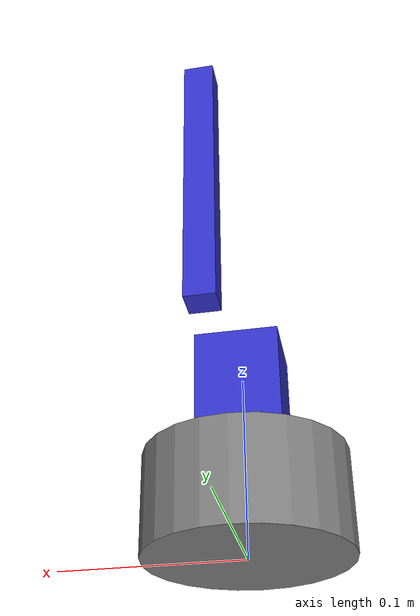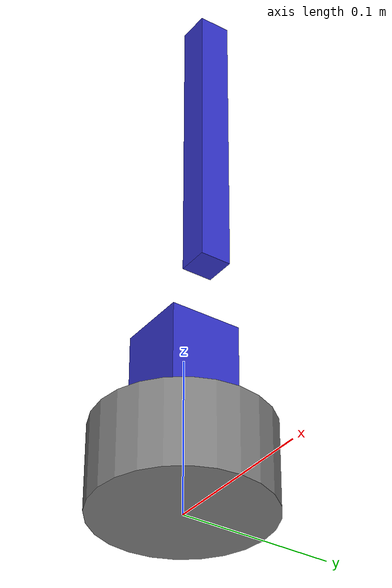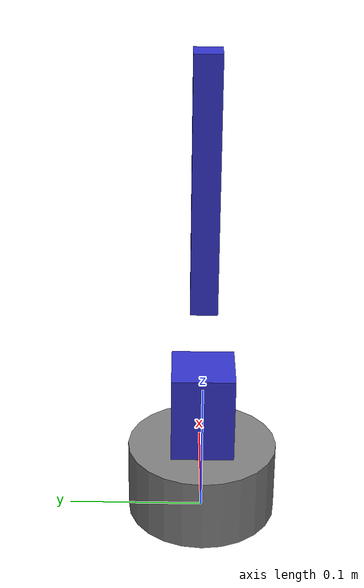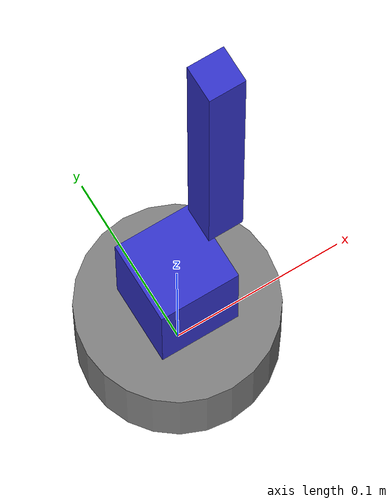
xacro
<?xml version="1.0"?>
<robot xmlns:xacro="http://ros.org/wiki/xacro" name="primio_arm_r01">

  <!-- Basic dimensions -->
  <xacro:property name="base_height" value="0.055"/>     <!-- 55mm -->
  <xacro:property name="base_radius" value="0.055"/>      <!-- 110mm diameter -->
  <xacro:property name="motor_size" value="0.046"/>       <!-- 46mm square face -->
  <xacro:property name="motor_height" value="0.065"/>     <!-- 65mm tall -->
  <xacro:property name="motor_offset" value="0.023"/>     <!-- 23mm offset from center -->
  <xacro:property name="link1_size" value="0.02"/>        <!-- 20mm square -->
  <xacro:property name="link1_length" value="0.19"/>      <!-- 190mm tall -->

  <!-- Colors -->
  <material name="gray"><color rgba="0.5 0.5 0.5 1.0"/></material>
  <material name="blue"><color rgba="0.2 0.2 0.8 1.0"/></material>

  <!-- Base link: stationary cylinder -->
  <link name="base_link">
    <visual>
      <origin xyz="0 0 ${base_height/2}" rpy="0 0 0"/>
      <geometry>
        <cylinder length="${base_height}" radius="${base_radius}"/>
      </geometry>
      <material name="gray"/>
    </visual>
  </link>

  <!-- Joint 1: vertical rotation around Z-axis -->
  <joint name="joint_9" type="revolute">
    <parent link="base_link"/>
    <child link="motor_block"/>
    <origin xyz="0 0 ${base_height}" rpy="0 0 0"/>
    <axis xyz="0 0 1"/>
    <limit effort="1.0" lower="-3.14" upper="3.14" velocity="1.0"/>
  </joint>

  <!-- Motor block: rectangular box mounted on top of base -->
  <link name="motor_block">
    <visual>
      <origin xyz="0 0 ${motor_height/2}" rpy="0 0 0"/>
      <geometry>
        <box size="${motor_size} ${motor_size} ${motor_height}"/>
      </geometry>
      <material name="blue"/>
    </visual>
  </link>

  <!-- Joint 2: horizontal rotation on motor face, offset from center -->
  <joint name="joint_10" type="revolute">
    <parent link="motor_block"/>
    <child link="link_1"/>
    <origin xyz="${motor_offset} 0 ${base_height + 0.045}" rpy="0 0 0"/>
    <axis xyz="1 0 0"/>
    <limit effort="1.0" lower="-3.14" upper="3.14" velocity="1.0"/>
  </joint>

  <!-- Link 1: vertical rectangular prism -->
  <link name="link_1">
    <visual>
      <origin xyz="0 0 ${link1_length/2}" rpy="0 0 0"/>
      <geometry>
        <box size="${link1_size} ${link1_size} ${link1_length}"/>
      </geometry>
      <material name="blue"/>
    </visual>
  </link>

</robot>
